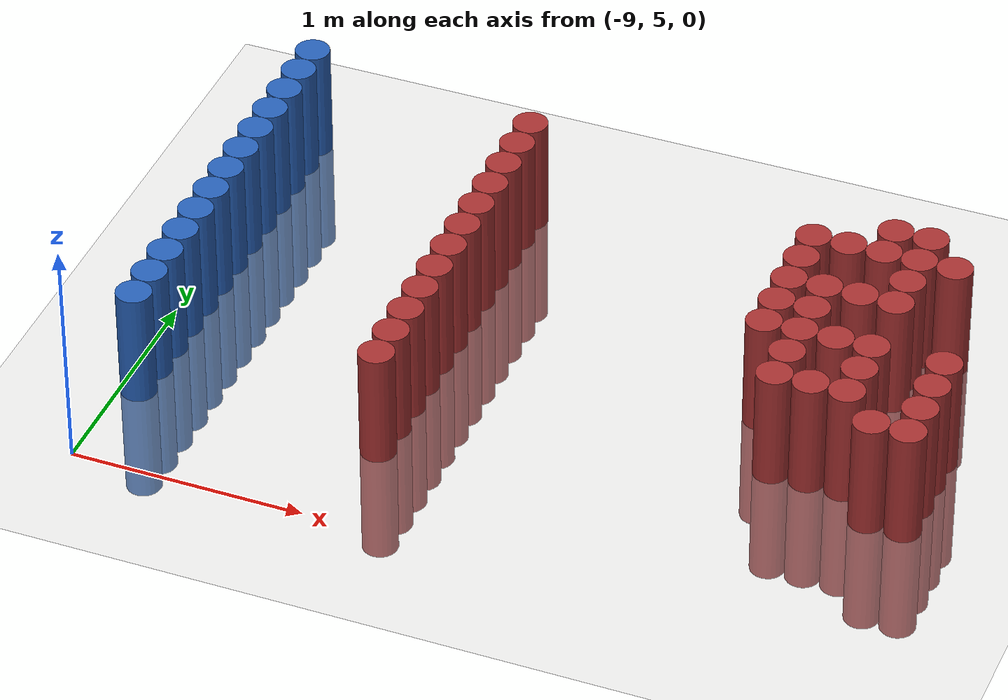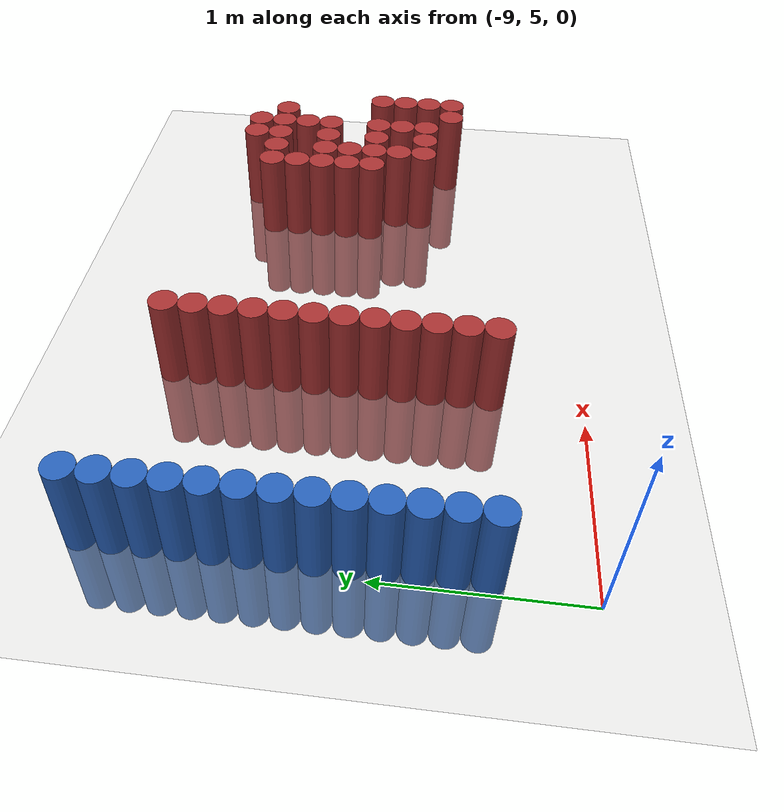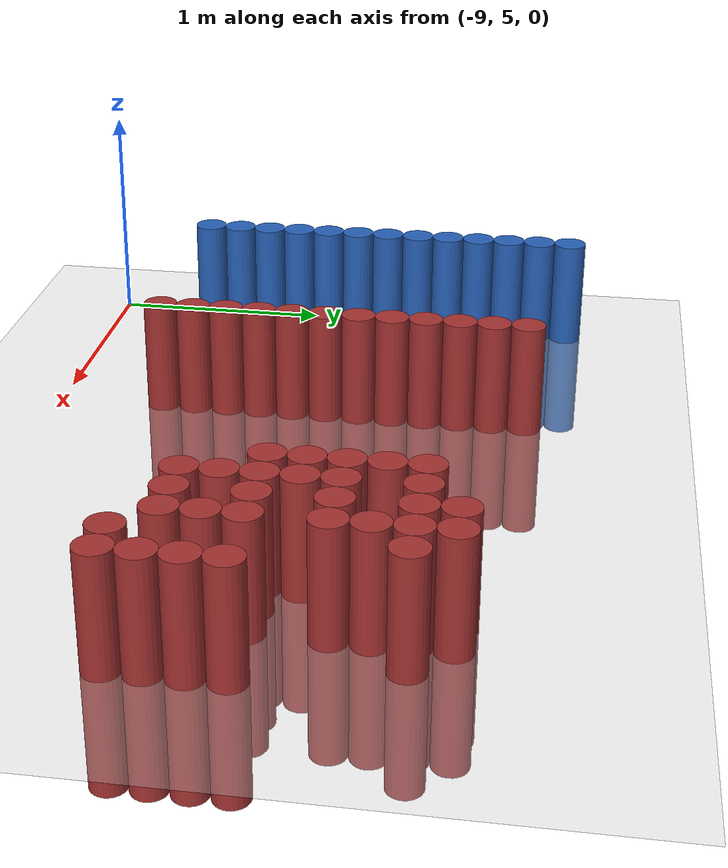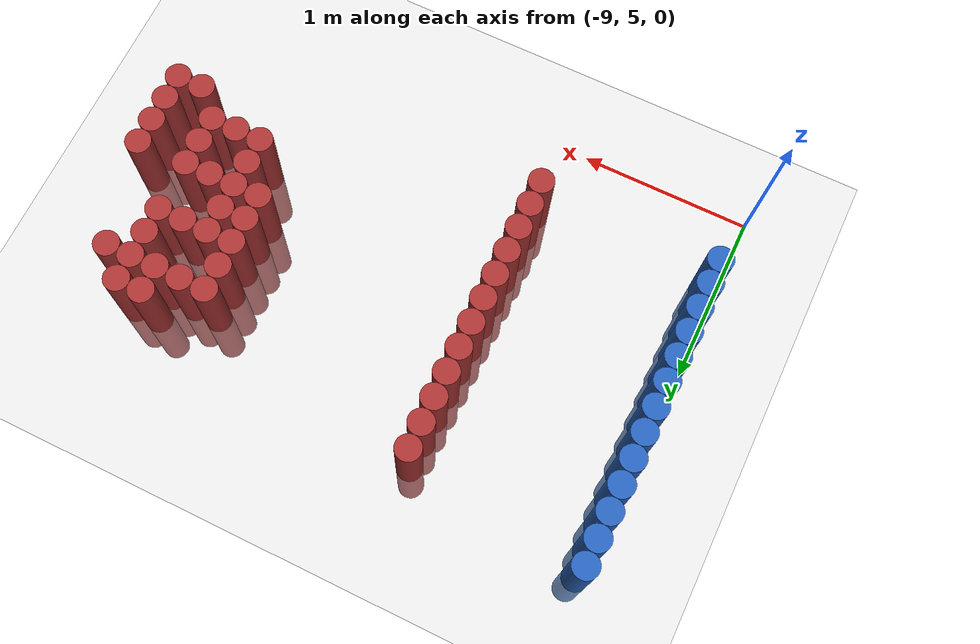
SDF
<sdf version="1.6">
 <world name="default">
  <model name="ground_plane">
   <static>1</static>
   <link name="link">
    <collision name="collision">
     <geometry><plane><normal>0 0 1</normal><size>100 100</size></plane></geometry>
     <surface><friction><ode><mu>100</mu><mu2>50</mu2></ode></friction></surface>
    </collision>
    <visual name="visual">
     <cast_shadows>0</cast_shadows>
     <geometry><plane><normal>0 0 1</normal><size>100 100</size></plane></geometry>
     <material>
      <script><uri>file://media/materials/scripts/gazebo.material</uri><name>Gazebo/Grey</name></script>
     </material>
    </visual>
   </link>
  </model>
  <model name="unit_cylinder_127">
   <static>1</static>
   <pose>-8.925000 5.475000 0.000000 0.000000 0.000000 0.000000</pose>
   <link name="link">
    <inertial>
     <mass>1</mass>
     <inertia><ixx>0.145833</ixx><ixy>0</ixy><ixz>0</ixz><iyy>0.145833</iyy><iyz>0</iyz><izz>0.125</izz></inertia>
    </inertial>
    <collision name="collision">
     <geometry><cylinder><radius>0.075000</radius><length>1</length></cylinder></geometry>
    </collision>
    <visual name="visual">
     <geometry><cylinder><radius>0.075000</radius><length>1</length></cylinder></geometry>
     <material>
      <ambient>0.152000 0.379000 0.720000 1</ambient>
      <diffuse>0.152000 0.379000 0.720000 1</diffuse>
     </material>
     <material>
      <script><name>Gazebo/Grey</name><uri>file://media/materials/scripts/gazebo.material</uri></script>
     </material>
    </visual>
   </link>
  </model>
  <model name="unit_cylinder_128">
   <static>1</static>
   <pose>-8.925000 5.625000 0.000000 0.000000 0.000000 0.000000</pose>
   <link name="link">
    <inertial>
     <mass>1</mass>
     <inertia><ixx>0.145833</ixx><ixy>0</ixy><ixz>0</ixz><iyy>0.145833</iyy><iyz>0</iyz><izz>0.125</izz></inertia>
    </inertial>
    <collision name="collision">
     <geometry><cylinder><radius>0.075000</radius><length>1</length></cylinder></geometry>
    </collision>
    <visual name="visual">
     <geometry><cylinder><radius>0.075000</radius><length>1</length></cylinder></geometry>
     <material>
      <ambient>0.152000 0.379000 0.720000 1</ambient>
      <diffuse>0.152000 0.379000 0.720000 1</diffuse>
     </material>
     <material>
      <script><name>Gazebo/Grey</name><uri>file://media/materials/scripts/gazebo.material</uri></script>
     </material>
    </visual>
   </link>
  </model>
  <model name="unit_cylinder_129">
   <static>1</static>
   <pose>-8.925000 5.775000 0.000000 0.000000 0.000000 0.000000</pose>
   <link name="link">
    <inertial>
     <mass>1</mass>
     <inertia><ixx>0.145833</ixx><ixy>0</ixy><ixz>0</ixz><iyy>0.145833</iyy><iyz>0</iyz><izz>0.125</izz></inertia>
    </inertial>
    <collision name="collision">
     <geometry><cylinder><radius>0.075000</radius><length>1</length></cylinder></geometry>
    </collision>
    <visual name="visual">
     <geometry><cylinder><radius>0.075000</radius><length>1</length></cylinder></geometry>
     <material>
      <ambient>0.152000 0.379000 0.720000 1</ambient>
      <diffuse>0.152000 0.379000 0.720000 1</diffuse>
     </material>
     <material>
      <script><name>Gazebo/Grey</name><uri>file://media/materials/scripts/gazebo.material</uri></script>
     </material>
    </visual>
   </link>
  </model>
  <model name="unit_cylinder_130">
   <static>1</static>
   <pose>-8.925000 5.925000 0.000000 0.000000 0.000000 0.000000</pose>
   <link name="link">
    <inertial>
     <mass>1</mass>
     <inertia><ixx>0.145833</ixx><ixy>0</ixy><ixz>0</ixz><iyy>0.145833</iyy><iyz>0</iyz><izz>0.125</izz></inertia>
    </inertial>
    <collision name="collision">
     <geometry><cylinder><radius>0.075000</radius><length>1</length></cylinder></geometry>
    </collision>
    <visual name="visual">
     <geometry><cylinder><radius>0.075000</radius><length>1</length></cylinder></geometry>
     <material>
      <ambient>0.152000 0.379000 0.720000 1</ambient>
      <diffuse>0.152000 0.379000 0.720000 1</diffuse>
     </material>
     <material>
      <script><name>Gazebo/Grey</name><uri>file://media/materials/scripts/gazebo.material</uri></script>
     </material>
    </visual>
   </link>
  </model>
  <model name="unit_cylinder_131">
   <static>1</static>
   <pose>-8.925000 6.075000 0.000000 0.000000 0.000000 0.000000</pose>
   <link name="link">
    <inertial>
     <mass>1</mass>
     <inertia><ixx>0.145833</ixx><ixy>0</ixy><ixz>0</ixz><iyy>0.145833</iyy><iyz>0</iyz><izz>0.125</izz></inertia>
    </inertial>
    <collision name="collision">
     <geometry><cylinder><radius>0.075000</radius><length>1</length></cylinder></geometry>
    </collision>
    <visual name="visual">
     <geometry><cylinder><radius>0.075000</radius><length>1</length></cylinder></geometry>
     <material>
      <ambient>0.152000 0.379000 0.720000 1</ambient>
      <diffuse>0.152000 0.379000 0.720000 1</diffuse>
     </material>
     <material>
      <script><name>Gazebo/Grey</name><uri>file://media/materials/scripts/gazebo.material</uri></script>
     </material>
    </visual>
   </link>
  </model>
  <model name="unit_cylinder_132">
   <static>1</static>
   <pose>-8.925000 6.225000 0.000000 0.000000 0.000000 0.000000</pose>
   <link name="link">
    <inertial>
     <mass>1</mass>
     <inertia><ixx>0.145833</ixx><ixy>0</ixy><ixz>0</ixz><iyy>0.145833</iyy><iyz>0</iyz><izz>0.125</izz></inertia>
    </inertial>
    <collision name="collision">
     <geometry><cylinder><radius>0.075000</radius><length>1</length></cylinder></geometry>
    </collision>
    <visual name="visual">
     <geometry><cylinder><radius>0.075000</radius><length>1</length></cylinder></geometry>
     <material>
      <ambient>0.152000 0.379000 0.720000 1</ambient>
      <diffuse>0.152000 0.379000 0.720000 1</diffuse>
     </material>
     <material>
      <script><name>Gazebo/Grey</name><uri>file://media/materials/scripts/gazebo.material</uri></script>
     </material>
    </visual>
   </link>
  </model>
  <model name="unit_cylinder_133">
   <static>1</static>
   <pose>-8.925000 6.375000 0.000000 0.000000 0.000000 0.000000</pose>
   <link name="link">
    <inertial>
     <mass>1</mass>
     <inertia><ixx>0.145833</ixx><ixy>0</ixy><ixz>0</ixz><iyy>0.145833</iyy><iyz>0</iyz><izz>0.125</izz></inertia>
    </inertial>
    <collision name="collision">
     <geometry><cylinder><radius>0.075000</radius><length>1</length></cylinder></geometry>
    </collision>
    <visual name="visual">
     <geometry><cylinder><radius>0.075000</radius><length>1</length></cylinder></geometry>
     <material>
      <ambient>0.152000 0.379000 0.720000 1</ambient>
      <diffuse>0.152000 0.379000 0.720000 1</diffuse>
     </material>
     <material>
      <script><name>Gazebo/Grey</name><uri>file://media/materials/scripts/gazebo.material</uri></script>
     </material>
    </visual>
   </link>
  </model>
  <model name="unit_cylinder_134">
   <static>1</static>
   <pose>-8.925000 6.525000 0.000000 0.000000 0.000000 0.000000</pose>
   <link name="link">
    <inertial>
     <mass>1</mass>
     <inertia><ixx>0.145833</ixx><ixy>0</ixy><ixz>0</ixz><iyy>0.145833</iyy><iyz>0</iyz><izz>0.125</izz></inertia>
    </inertial>
    <collision name="collision">
     <geometry><cylinder><radius>0.075000</radius><length>1</length></cylinder></geometry>
    </collision>
    <visual name="visual">
     <geometry><cylinder><radius>0.075000</radius><length>1</length></cylinder></geometry>
     <material>
      <ambient>0.152000 0.379000 0.720000 1</ambient>
      <diffuse>0.152000 0.379000 0.720000 1</diffuse>
     </material>
     <material>
      <script><name>Gazebo/Grey</name><uri>file://media/materials/scripts/gazebo.material</uri></script>
     </material>
    </visual>
   </link>
  </model>
  <model name="unit_cylinder_135">
   <static>1</static>
   <pose>-8.925000 6.675000 0.000000 0.000000 0.000000 0.000000</pose>
   <link name="link">
    <inertial>
     <mass>1</mass>
     <inertia><ixx>0.145833</ixx><ixy>0</ixy><ixz>0</ixz><iyy>0.145833</iyy><iyz>0</iyz><izz>0.125</izz></inertia>
    </inertial>
    <collision name="collision">
     <geometry><cylinder><radius>0.075000</radius><length>1</length></cylinder></geometry>
    </collision>
    <visual name="visual">
     <geometry><cylinder><radius>0.075000</radius><length>1</length></cylinder></geometry>
     <material>
      <ambient>0.152000 0.379000 0.720000 1</ambient>
      <diffuse>0.152000 0.379000 0.720000 1</diffuse>
     </material>
     <material>
      <script><name>Gazebo/Grey</name><uri>file://media/materials/scripts/gazebo.material</uri></script>
     </material>
    </visual>
   </link>
  </model>
  <model name="unit_cylinder_136">
   <static>1</static>
   <pose>-8.925000 6.825000 0.000000 0.000000 0.000000 0.000000</pose>
   <link name="link">
    <inertial>
     <mass>1</mass>
     <inertia><ixx>0.145833</ixx><ixy>0</ixy><ixz>0</ixz><iyy>0.145833</iyy><iyz>0</iyz><izz>0.125</izz></inertia>
    </inertial>
    <collision name="collision">
     <geometry><cylinder><radius>0.075000</radius><length>1</length></cylinder></geometry>
    </collision>
    <visual name="visual">
     <geometry><cylinder><radius>0.075000</radius><length>1</length></cylinder></geometry>
     <material>
      <ambient>0.152000 0.379000 0.720000 1</ambient>
      <diffuse>0.152000 0.379000 0.720000 1</diffuse>
     </material>
     <material>
      <script><name>Gazebo/Grey</name><uri>file://media/materials/scripts/gazebo.material</uri></script>
     </material>
    </visual>
   </link>
  </model>
  <model name="unit_cylinder_137">
   <static>1</static>
   <pose>-8.925000 6.975000 0.000000 0.000000 0.000000 0.000000</pose>
   <link name="link">
    <inertial>
     <mass>1</mass>
     <inertia><ixx>0.145833</ixx><ixy>0</ixy><ixz>0</ixz><iyy>0.145833</iyy><iyz>0</iyz><izz>0.125</izz></inertia>
    </inertial>
    <collision name="collision">
     <geometry><cylinder><radius>0.075000</radius><length>1</length></cylinder></geometry>
    </collision>
    <visual name="visual">
     <geometry><cylinder><radius>0.075000</radius><length>1</length></cylinder></geometry>
     <material>
      <ambient>0.152000 0.379000 0.720000 1</ambient>
      <diffuse>0.152000 0.379000 0.720000 1</diffuse>
     </material>
     <material>
      <script><name>Gazebo/Grey</name><uri>file://media/materials/scripts/gazebo.material</uri></script>
     </material>
    </visual>
   </link>
  </model>
  <model name="unit_cylinder_138">
   <static>1</static>
   <pose>-8.925000 7.125000 0.000000 0.000000 0.000000 0.000000</pose>
   <link name="link">
    <inertial>
     <mass>1</mass>
     <inertia><ixx>0.145833</ixx><ixy>0</ixy><ixz>0</ixz><iyy>0.145833</iyy><iyz>0</iyz><izz>0.125</izz></inertia>
    </inertial>
    <collision name="collision">
     <geometry><cylinder><radius>0.075000</radius><length>1</length></cylinder></geometry>
    </collision>
    <visual name="visual">
     <geometry><cylinder><radius>0.075000</radius><length>1</length></cylinder></geometry>
     <material>
      <ambient>0.152000 0.379000 0.720000 1</ambient>
      <diffuse>0.152000 0.379000 0.720000 1</diffuse>
     </material>
     <material>
      <script><name>Gazebo/Grey</name><uri>file://media/materials/scripts/gazebo.material</uri></script>
     </material>
    </visual>
   </link>
  </model>
  <model name="unit_cylinder_139">
   <static>1</static>
   <pose>-8.925000 7.275000 0.000000 0.000000 0.000000 0.000000</pose>
   <link name="link">
    <inertial>
     <mass>1</mass>
     <inertia><ixx>0.145833</ixx><ixy>0</ixy><ixz>0</ixz><iyy>0.145833</iyy><iyz>0</iyz><izz>0.125</izz></inertia>
    </inertial>
    <collision name="collision">
     <geometry><cylinder><radius>0.075000</radius><length>1</length></cylinder></geometry>
    </collision>
    <visual name="visual">
     <geometry><cylinder><radius>0.075000</radius><length>1</length></cylinder></geometry>
     <material>
      <ambient>0.152000 0.379000 0.720000 1</ambient>
      <diffuse>0.152000 0.379000 0.720000 1</diffuse>
     </material>
     <material>
      <script><name>Gazebo/Grey</name><uri>file://media/materials/scripts/gazebo.material</uri></script>
     </material>
    </visual>
   </link>
  </model>
  <model name="unit_cylinder_169">
   <static>1</static>
   <pose>-7.875000 5.475000 0.000000 0.000000 0.000000 0.000000</pose>
   <link name="link">
    <inertial>
     <mass>1</mass>
     <inertia><ixx>0.145833</ixx><ixy>0</ixy><ixz>0</ixz><iyy>0.145833</iyy><iyz>0</iyz><izz>0.125</izz></inertia>
    </inertial>
    <collision name="collision">
     <geometry><cylinder><radius>0.075000</radius><length>1</length></cylinder></geometry>
    </collision>
    <visual name="visual">
     <geometry><cylinder><radius>0.075000</radius><length>1</length></cylinder></geometry>
     <material>
      <ambient>0.648000 0.192000 0.192000 1</ambient>
      <diffuse>0.648000 0.192000 0.192000 1</diffuse>
     </material>
     <material>
      <script><name>Gazebo/Grey</name><uri>file://media/materials/scripts/gazebo.material</uri></script>
     </material>
    </visual>
   </link>
  </model>
  <model name="unit_cylinder_170">
   <static>1</static>
   <pose>-7.875000 5.625000 0.000000 0.000000 0.000000 0.000000</pose>
   <link name="link">
    <inertial>
     <mass>1</mass>
     <inertia><ixx>0.145833</ixx><ixy>0</ixy><ixz>0</ixz><iyy>0.145833</iyy><iyz>0</iyz><izz>0.125</izz></inertia>
    </inertial>
    <collision name="collision">
     <geometry><cylinder><radius>0.075000</radius><length>1</length></cylinder></geometry>
    </collision>
    <visual name="visual">
     <geometry><cylinder><radius>0.075000</radius><length>1</length></cylinder></geometry>
     <material>
      <ambient>0.648000 0.192000 0.192000 1</ambient>
      <diffuse>0.648000 0.192000 0.192000 1</diffuse>
     </material>
     <material>
      <script><name>Gazebo/Grey</name><uri>file://media/materials/scripts/gazebo.material</uri></script>
     </material>
    </visual>
   </link>
  </model>
  <model name="unit_cylinder_171">
   <static>1</static>
   <pose>-7.875000 5.775000 0.000000 0.000000 0.000000 0.000000</pose>
   <link name="link">
    <inertial>
     <mass>1</mass>
     <inertia><ixx>0.145833</ixx><ixy>0</ixy><ixz>0</ixz><iyy>0.145833</iyy><iyz>0</iyz><izz>0.125</izz></inertia>
    </inertial>
    <collision name="collision">
     <geometry><cylinder><radius>0.075000</radius><length>1</length></cylinder></geometry>
    </collision>
    <visual name="visual">
     <geometry><cylinder><radius>0.075000</radius><length>1</length></cylinder></geometry>
     <material>
      <ambient>0.648000 0.192000 0.192000 1</ambient>
      <diffuse>0.648000 0.192000 0.192000 1</diffuse>
     </material>
     <material>
      <script><name>Gazebo/Grey</name><uri>file://media/materials/scripts/gazebo.material</uri></script>
     </material>
    </visual>
   </link>
  </model>
  <model name="unit_cylinder_172">
   <static>1</static>
   <pose>-7.875000 5.925000 0.000000 0.000000 0.000000 0.000000</pose>
   <link name="link">
    <inertial>
     <mass>1</mass>
     <inertia><ixx>0.145833</ixx><ixy>0</ixy><ixz>0</ixz><iyy>0.145833</iyy><iyz>0</iyz><izz>0.125</izz></inertia>
    </inertial>
    <collision name="collision">
     <geometry><cylinder><radius>0.075000</radius><length>1</length></cylinder></geometry>
    </collision>
    <visual name="visual">
     <geometry><cylinder><radius>0.075000</radius><length>1</length></cylinder></geometry>
     <material>
      <ambient>0.648000 0.192000 0.192000 1</ambient>
      <diffuse>0.648000 0.192000 0.192000 1</diffuse>
     </material>
     <material>
      <script><name>Gazebo/Grey</name><uri>file://media/materials/scripts/gazebo.material</uri></script>
     </material>
    </visual>
   </link>
  </model>
  <model name="unit_cylinder_173">
   <static>1</static>
   <pose>-7.875000 6.075000 0.000000 0.000000 0.000000 0.000000</pose>
   <link name="link">
    <inertial>
     <mass>1</mass>
     <inertia><ixx>0.145833</ixx><ixy>0</ixy><ixz>0</ixz><iyy>0.145833</iyy><iyz>0</iyz><izz>0.125</izz></inertia>
    </inertial>
    <collision name="collision">
     <geometry><cylinder><radius>0.075000</radius><length>1</length></cylinder></geometry>
    </collision>
    <visual name="visual">
     <geometry><cylinder><radius>0.075000</radius><length>1</length></cylinder></geometry>
     <material>
      <ambient>0.648000 0.192000 0.192000 1</ambient>
      <diffuse>0.648000 0.192000 0.192000 1</diffuse>
     </material>
     <material>
      <script><name>Gazebo/Grey</name><uri>file://media/materials/scripts/gazebo.material</uri></script>
     </material>
    </visual>
   </link>
  </model>
  <model name="unit_cylinder_174">
   <static>1</static>
   <pose>-7.875000 6.225000 0.000000 0.000000 0.000000 0.000000</pose>
   <link name="link">
    <inertial>
     <mass>1</mass>
     <inertia><ixx>0.145833</ixx><ixy>0</ixy><ixz>0</ixz><iyy>0.145833</iyy><iyz>0</iyz><izz>0.125</izz></inertia>
    </inertial>
    <collision name="collision">
     <geometry><cylinder><radius>0.075000</radius><length>1</length></cylinder></geometry>
    </collision>
    <visual name="visual">
     <geometry><cylinder><radius>0.075000</radius><length>1</length></cylinder></geometry>
     <material>
      <ambient>0.648000 0.192000 0.192000 1</ambient>
      <diffuse>0.648000 0.192000 0.192000 1</diffuse>
     </material>
     <material>
      <script><name>Gazebo/Grey</name><uri>file://media/materials/scripts/gazebo.material</uri></script>
     </material>
    </visual>
   </link>
  </model>
  <model name="unit_cylinder_175">
   <static>1</static>
   <pose>-7.875000 6.375000 0.000000 0.000000 0.000000 0.000000</pose>
   <link name="link">
    <inertial>
     <mass>1</mass>
     <inertia><ixx>0.145833</ixx><ixy>0</ixy><ixz>0</ixz><iyy>0.145833</iyy><iyz>0</iyz><izz>0.125</izz></inertia>
    </inertial>
    <collision name="collision">
     <geometry><cylinder><radius>0.075000</radius><length>1</length></cylinder></geometry>
    </collision>
    <visual name="visual">
     <geometry><cylinder><radius>0.075000</radius><length>1</length></cylinder></geometry>
     <material>
      <ambient>0.648000 0.192000 0.192000 1</ambient>
      <diffuse>0.648000 0.192000 0.192000 1</diffuse>
     </material>
     <material>
      <script><name>Gazebo/Grey</name><uri>file://media/materials/scripts/gazebo.material</uri></script>
     </material>
    </visual>
   </link>
  </model>
  <model name="unit_cylinder_176">
   <static>1</static>
   <pose>-7.875000 6.525000 0.000000 0.000000 0.000000 0.000000</pose>
   <link name="link">
    <inertial>
     <mass>1</mass>
     <inertia><ixx>0.145833</ixx><ixy>0</ixy><ixz>0</ixz><iyy>0.145833</iyy><iyz>0</iyz><izz>0.125</izz></inertia>
    </inertial>
    <collision name="collision">
     <geometry><cylinder><radius>0.075000</radius><length>1</length></cylinder></geometry>
    </collision>
    <visual name="visual">
     <geometry><cylinder><radius>0.075000</radius><length>1</length></cylinder></geometry>
     <material>
      <ambient>0.648000 0.192000 0.192000 1</ambient>
      <diffuse>0.648000 0.192000 0.192000 1</diffuse>
     </material>
     <material>
      <script><name>Gazebo/Grey</name><uri>file://media/materials/scripts/gazebo.material</uri></script>
     </material>
    </visual>
   </link>
  </model>
  <model name="unit_cylinder_177">
   <static>1</static>
   <pose>-7.875000 6.675000 0.000000 0.000000 0.000000 0.000000</pose>
   <link name="link">
    <inertial>
     <mass>1</mass>
     <inertia><ixx>0.145833</ixx><ixy>0</ixy><ixz>0</ixz><iyy>0.145833</iyy><iyz>0</iyz><izz>0.125</izz></inertia>
    </inertial>
    <collision name="collision">
     <geometry><cylinder><radius>0.075000</radius><length>1</length></cylinder></geometry>
    </collision>
    <visual name="visual">
     <geometry><cylinder><radius>0.075000</radius><length>1</length></cylinder></geometry>
     <material>
      <ambient>0.648000 0.192000 0.192000 1</ambient>
      <diffuse>0.648000 0.192000 0.192000 1</diffuse>
     </material>
     <material>
      <script><name>Gazebo/Grey</name><uri>file://media/materials/scripts/gazebo.material</uri></script>
     </material>
    </visual>
   </link>
  </model>
  <model name="unit_cylinder_178">
   <static>1</static>
   <pose>-7.875000 6.825000 0.000000 0.000000 0.000000 0.000000</pose>
   <link name="link">
    <inertial>
     <mass>1</mass>
     <inertia><ixx>0.145833</ixx><ixy>0</ixy><ixz>0</ixz><iyy>0.145833</iyy><iyz>0</iyz><izz>0.125</izz></inertia>
    </inertial>
    <collision name="collision">
     <geometry><cylinder><radius>0.075000</radius><length>1</length></cylinder></geometry>
    </collision>
    <visual name="visual">
     <geometry><cylinder><radius>0.075000</radius><length>1</length></cylinder></geometry>
     <material>
      <ambient>0.648000 0.192000 0.192000 1</ambient>
      <diffuse>0.648000 0.192000 0.192000 1</diffuse>
     </material>
     <material>
      <script><name>Gazebo/Grey</name><uri>file://media/materials/scripts/gazebo.material</uri></script>
     </material>
    </visual>
   </link>
  </model>
  <model name="unit_cylinder_179">
   <static>1</static>
   <pose>-7.875000 6.975000 0.000000 0.000000 0.000000 0.000000</pose>
   <link name="link">
    <inertial>
     <mass>1</mass>
     <inertia><ixx>0.145833</ixx><ixy>0</ixy><ixz>0</ixz><iyy>0.145833</iyy><iyz>0</iyz><izz>0.125</izz></inertia>
    </inertial>
    <collision name="collision">
     <geometry><cylinder><radius>0.075000</radius><length>1</length></cylinder></geometry>
    </collision>
    <visual name="visual">
     <geometry><cylinder><radius>0.075000</radius><length>1</length></cylinder></geometry>
     <material>
      <ambient>0.648000 0.192000 0.192000 1</ambient>
      <diffuse>0.648000 0.192000 0.192000 1</diffuse>
     </material>
     <material>
      <script><name>Gazebo/Grey</name><uri>file://media/materials/scripts/gazebo.material</uri></script>
     </material>
    </visual>
   </link>
  </model>
  <model name="unit_cylinder_180">
   <static>1</static>
   <pose>-7.875000 7.125000 0.000000 0.000000 0.000000 0.000000</pose>
   <link name="link">
    <inertial>
     <mass>1</mass>
     <inertia><ixx>0.145833</ixx><ixy>0</ixy><ixz>0</ixz><iyy>0.145833</iyy><iyz>0</iyz><izz>0.125</izz></inertia>
    </inertial>
    <collision name="collision">
     <geometry><cylinder><radius>0.075000</radius><length>1</length></cylinder></geometry>
    </collision>
    <visual name="visual">
     <geometry><cylinder><radius>0.075000</radius><length>1</length></cylinder></geometry>
     <material>
      <ambient>0.648000 0.192000 0.192000 1</ambient>
      <diffuse>0.648000 0.192000 0.192000 1</diffuse>
     </material>
     <material>
      <script><name>Gazebo/Grey</name><uri>file://media/materials/scripts/gazebo.material</uri></script>
     </material>
    </visual>
   </link>
  </model>
  <model name="unit_cylinder_199">
   <static>1</static>
   <pose>-6.525000 6.225000 0.000000 0.000000 0.000000 0.000000</pose>
   <link name="link">
    <inertial>
     <mass>1</mass>
     <inertia><ixx>0.145833</ixx><ixy>0</ixy><ixz>0</ixz><iyy>0.145833</iyy><iyz>0</iyz><izz>0.125</izz></inertia>
    </inertial>
    <collision name="collision">
     <geometry><cylinder><radius>0.075000</radius><length>1</length></cylinder></geometry>
    </collision>
    <visual name="visual">
     <geometry><cylinder><radius>0.075000</radius><length>1</length></cylinder></geometry>
     <material>
      <ambient>0.648000 0.192000 0.192000 1</ambient>
      <diffuse>0.648000 0.192000 0.192000 1</diffuse>
     </material>
     <material>
      <script><name>Gazebo/Grey</name><uri>file://media/materials/scripts/gazebo.material</uri></script>
     </material>
    </visual>
   </link>
  </model>
  <model name="unit_cylinder_200">
   <static>1</static>
   <pose>-6.525000 6.375000 0.000000 0.000000 0.000000 0.000000</pose>
   <link name="link">
    <inertial>
     <mass>1</mass>
     <inertia><ixx>0.145833</ixx><ixy>0</ixy><ixz>0</ixz><iyy>0.145833</iyy><iyz>0</iyz><izz>0.125</izz></inertia>
    </inertial>
    <collision name="collision">
     <geometry><cylinder><radius>0.075000</radius><length>1</length></cylinder></geometry>
    </collision>
    <visual name="visual">
     <geometry><cylinder><radius>0.075000</radius><length>1</length></cylinder></geometry>
     <material>
      <ambient>0.648000 0.192000 0.192000 1</ambient>
      <diffuse>0.648000 0.192000 0.192000 1</diffuse>
     </material>
     <material>
      <script><name>Gazebo/Grey</name><uri>file://media/materials/scripts/gazebo.material</uri></script>
     </material>
    </visual>
   </link>
  </model>
  <model name="unit_cylinder_201">
   <static>1</static>
   <pose>-6.525000 6.525000 0.000000 0.000000 0.000000 0.000000</pose>
   <link name="link">
    <inertial>
     <mass>1</mass>
     <inertia><ixx>0.145833</ixx><ixy>0</ixy><ixz>0</ixz><iyy>0.145833</iyy><iyz>0</iyz><izz>0.125</izz></inertia>
    </inertial>
    <collision name="collision">
     <geometry><cylinder><radius>0.075000</radius><length>1</length></cylinder></geometry>
    </collision>
    <visual name="visual">
     <geometry><cylinder><radius>0.075000</radius><length>1</length></cylinder></geometry>
     <material>
      <ambient>0.648000 0.192000 0.192000 1</ambient>
      <diffuse>0.648000 0.192000 0.192000 1</diffuse>
     </material>
     <material>
      <script><name>Gazebo/Grey</name><uri>file://media/materials/scripts/gazebo.material</uri></script>
     </material>
    </visual>
   </link>
  </model>
  <model name="unit_cylinder_202">
   <static>1</static>
   <pose>-6.525000 6.675000 0.000000 0.000000 0.000000 0.000000</pose>
   <link name="link">
    <inertial>
     <mass>1</mass>
     <inertia><ixx>0.145833</ixx><ixy>0</ixy><ixz>0</ixz><iyy>0.145833</iyy><iyz>0</iyz><izz>0.125</izz></inertia>
    </inertial>
    <collision name="collision">
     <geometry><cylinder><radius>0.075000</radius><length>1</length></cylinder></geometry>
    </collision>
    <visual name="visual">
     <geometry><cylinder><radius>0.075000</radius><length>1</length></cylinder></geometry>
     <material>
      <ambient>0.648000 0.192000 0.192000 1</ambient>
      <diffuse>0.648000 0.192000 0.192000 1</diffuse>
     </material>
     <material>
      <script><name>Gazebo/Grey</name><uri>file://media/materials/scripts/gazebo.material</uri></script>
     </material>
    </visual>
   </link>
  </model>
  <model name="unit_cylinder_203">
   <static>1</static>
   <pose>-6.525000 6.825000 0.000000 0.000000 0.000000 0.000000</pose>
   <link name="link">
    <inertial>
     <mass>1</mass>
     <inertia><ixx>0.145833</ixx><ixy>0</ixy><ixz>0</ixz><iyy>0.145833</iyy><iyz>0</iyz><izz>0.125</izz></inertia>
    </inertial>
    <collision name="collision">
     <geometry><cylinder><radius>0.075000</radius><length>1</length></cylinder></geometry>
    </collision>
    <visual name="visual">
     <geometry><cylinder><radius>0.075000</radius><length>1</length></cylinder></geometry>
     <material>
      <ambient>0.648000 0.192000 0.192000 1</ambient>
      <diffuse>0.648000 0.192000 0.192000 1</diffuse>
     </material>
     <material>
      <script><name>Gazebo/Grey</name><uri>file://media/materials/scripts/gazebo.material</uri></script>
     </material>
    </visual>
   </link>
  </model>
  <model name="unit_cylinder_204">
   <static>1</static>
   <pose>-6.375000 5.925000 0.000000 0.000000 0.000000 0.000000</pose>
   <link name="link">
    <inertial>
     <mass>1</mass>
     <inertia><ixx>0.145833</ixx><ixy>0</ixy><ixz>0</ixz><iyy>0.145833</iyy><iyz>0</iyz><izz>0.125</izz></inertia>
    </inertial>
    <collision name="collision">
     <geometry><cylinder><radius>0.075000</radius><length>1</length></cylinder></geometry>
    </collision>
    <visual name="visual">
     <geometry><cylinder><radius>0.075000</radius><length>1</length></cylinder></geometry>
     <material>
      <ambient>0.648000 0.192000 0.192000 1</ambient>
      <diffuse>0.648000 0.192000 0.192000 1</diffuse>
     </material>
     <material>
      <script><name>Gazebo/Grey</name><uri>file://media/materials/scripts/gazebo.material</uri></script>
     </material>
    </visual>
   </link>
  </model>
  <model name="unit_cylinder_205">
   <static>1</static>
   <pose>-6.375000 6.075000 0.000000 0.000000 0.000000 0.000000</pose>
   <link name="link">
    <inertial>
     <mass>1</mass>
     <inertia><ixx>0.145833</ixx><ixy>0</ixy><ixz>0</ixz><iyy>0.145833</iyy><iyz>0</iyz><izz>0.125</izz></inertia>
    </inertial>
    <collision name="collision">
     <geometry><cylinder><radius>0.075000</radius><length>1</length></cylinder></geometry>
    </collision>
    <visual name="visual">
     <geometry><cylinder><radius>0.075000</radius><length>1</length></cylinder></geometry>
     <material>
      <ambient>0.648000 0.192000 0.192000 1</ambient>
      <diffuse>0.648000 0.192000 0.192000 1</diffuse>
     </material>
     <material>
      <script><name>Gazebo/Grey</name><uri>file://media/materials/scripts/gazebo.material</uri></script>
     </material>
    </visual>
   </link>
  </model>
  <model name="unit_cylinder_206">
   <static>1</static>
   <pose>-6.375000 6.225000 0.000000 0.000000 0.000000 0.000000</pose>
   <link name="link">
    <inertial>
     <mass>1</mass>
     <inertia><ixx>0.145833</ixx><ixy>0</ixy><ixz>0</ixz><iyy>0.145833</iyy><iyz>0</iyz><izz>0.125</izz></inertia>
    </inertial>
    <collision name="collision">
     <geometry><cylinder><radius>0.075000</radius><length>1</length></cylinder></geometry>
    </collision>
    <visual name="visual">
     <geometry><cylinder><radius>0.075000</radius><length>1</length></cylinder></geometry>
     <material>
      <ambient>0.648000 0.192000 0.192000 1</ambient>
      <diffuse>0.648000 0.192000 0.192000 1</diffuse>
     </material>
     <material>
      <script><name>Gazebo/Grey</name><uri>file://media/materials/scripts/gazebo.material</uri></script>
     </material>
    </visual>
   </link>
  </model>
  <model name="unit_cylinder_207">
   <static>1</static>
   <pose>-6.375000 6.375000 0.000000 0.000000 0.000000 0.000000</pose>
   <link name="link">
    <inertial>
     <mass>1</mass>
     <inertia><ixx>0.145833</ixx><ixy>0</ixy><ixz>0</ixz><iyy>0.145833</iyy><iyz>0</iyz><izz>0.125</izz></inertia>
    </inertial>
    <collision name="collision">
     <geometry><cylinder><radius>0.075000</radius><length>1</length></cylinder></geometry>
    </collision>
    <visual name="visual">
     <geometry><cylinder><radius>0.075000</radius><length>1</length></cylinder></geometry>
     <material>
      <ambient>0.648000 0.192000 0.192000 1</ambient>
      <diffuse>0.648000 0.192000 0.192000 1</diffuse>
     </material>
     <material>
      <script><name>Gazebo/Grey</name><uri>file://media/materials/scripts/gazebo.material</uri></script>
     </material>
    </visual>
   </link>
  </model>
  <model name="unit_cylinder_208">
   <static>1</static>
   <pose>-6.375000 6.525000 0.000000 0.000000 0.000000 0.000000</pose>
   <link name="link">
    <inertial>
     <mass>1</mass>
     <inertia><ixx>0.145833</ixx><ixy>0</ixy><ixz>0</ixz><iyy>0.145833</iyy><iyz>0</iyz><izz>0.125</izz></inertia>
    </inertial>
    <collision name="collision">
     <geometry><cylinder><radius>0.075000</radius><length>1</length></cylinder></geometry>
    </collision>
    <visual name="visual">
     <geometry><cylinder><radius>0.075000</radius><length>1</length></cylinder></geometry>
     <material>
      <ambient>0.648000 0.192000 0.192000 1</ambient>
      <diffuse>0.648000 0.192000 0.192000 1</diffuse>
     </material>
     <material>
      <script><name>Gazebo/Grey</name><uri>file://media/materials/scripts/gazebo.material</uri></script>
     </material>
    </visual>
   </link>
  </model>
  <model name="unit_cylinder_209">
   <static>1</static>
   <pose>-6.375000 6.825000 0.000000 0.000000 0.000000 0.000000</pose>
   <link name="link">
    <inertial>
     <mass>1</mass>
     <inertia><ixx>0.145833</ixx><ixy>0</ixy><ixz>0</ixz><iyy>0.145833</iyy><iyz>0</iyz><izz>0.125</izz></inertia>
    </inertial>
    <collision name="collision">
     <geometry><cylinder><radius>0.075000</radius><length>1</length></cylinder></geometry>
    </collision>
    <visual name="visual">
     <geometry><cylinder><radius>0.075000</radius><length>1</length></cylinder></geometry>
     <material>
      <ambient>0.648000 0.192000 0.192000 1</ambient>
      <diffuse>0.648000 0.192000 0.192000 1</diffuse>
     </material>
     <material>
      <script><name>Gazebo/Grey</name><uri>file://media/materials/scripts/gazebo.material</uri></script>
     </material>
    </visual>
   </link>
  </model>
  <model name="unit_cylinder_212">
   <static>1</static>
   <pose>-6.225000 5.925000 0.000000 0.000000 0.000000 0.000000</pose>
   <link name="link">
    <inertial>
     <mass>1</mass>
     <inertia><ixx>0.145833</ixx><ixy>0</ixy><ixz>0</ixz><iyy>0.145833</iyy><iyz>0</iyz><izz>0.125</izz></inertia>
    </inertial>
    <collision name="collision">
     <geometry><cylinder><radius>0.075000</radius><length>1</length></cylinder></geometry>
    </collision>
    <visual name="visual">
     <geometry><cylinder><radius>0.075000</radius><length>1</length></cylinder></geometry>
     <material>
      <ambient>0.648000 0.192000 0.192000 1</ambient>
      <diffuse>0.648000 0.192000 0.192000 1</diffuse>
     </material>
     <material>
      <script><name>Gazebo/Grey</name><uri>file://media/materials/scripts/gazebo.material</uri></script>
     </material>
    </visual>
   </link>
  </model>
  <model name="unit_cylinder_213">
   <static>1</static>
   <pose>-6.225000 6.225000 0.000000 0.000000 0.000000 0.000000</pose>
   <link name="link">
    <inertial>
     <mass>1</mass>
     <inertia><ixx>0.145833</ixx><ixy>0</ixy><ixz>0</ixz><iyy>0.145833</iyy><iyz>0</iyz><izz>0.125</izz></inertia>
    </inertial>
    <collision name="collision">
     <geometry><cylinder><radius>0.075000</radius><length>1</length></cylinder></geometry>
    </collision>
    <visual name="visual">
     <geometry><cylinder><radius>0.075000</radius><length>1</length></cylinder></geometry>
     <material>
      <ambient>0.648000 0.192000 0.192000 1</ambient>
      <diffuse>0.648000 0.192000 0.192000 1</diffuse>
     </material>
     <material>
      <script><name>Gazebo/Grey</name><uri>file://media/materials/scripts/gazebo.material</uri></script>
     </material>
    </visual>
   </link>
  </model>
  <model name="unit_cylinder_214">
   <static>1</static>
   <pose>-6.225000 6.525000 0.000000 0.000000 0.000000 0.000000</pose>
   <link name="link">
    <inertial>
     <mass>1</mass>
     <inertia><ixx>0.145833</ixx><ixy>0</ixy><ixz>0</ixz><iyy>0.145833</iyy><iyz>0</iyz><izz>0.125</izz></inertia>
    </inertial>
    <collision name="collision">
     <geometry><cylinder><radius>0.075000</radius><length>1</length></cylinder></geometry>
    </collision>
    <visual name="visual">
     <geometry><cylinder><radius>0.075000</radius><length>1</length></cylinder></geometry>
     <material>
      <ambient>0.648000 0.192000 0.192000 1</ambient>
      <diffuse>0.648000 0.192000 0.192000 1</diffuse>
     </material>
     <material>
      <script><name>Gazebo/Grey</name><uri>file://media/materials/scripts/gazebo.material</uri></script>
     </material>
    </visual>
   </link>
  </model>
  <model name="unit_cylinder_215">
   <static>1</static>
   <pose>-6.225000 6.825000 0.000000 0.000000 0.000000 0.000000</pose>
   <link name="link">
    <inertial>
     <mass>1</mass>
     <inertia><ixx>0.145833</ixx><ixy>0</ixy><ixz>0</ixz><iyy>0.145833</iyy><iyz>0</iyz><izz>0.125</izz></inertia>
    </inertial>
    <collision name="collision">
     <geometry><cylinder><radius>0.075000</radius><length>1</length></cylinder></geometry>
    </collision>
    <visual name="visual">
     <geometry><cylinder><radius>0.075000</radius><length>1</length></cylinder></geometry>
     <material>
      <ambient>0.648000 0.192000 0.192000 1</ambient>
      <diffuse>0.648000 0.192000 0.192000 1</diffuse>
     </material>
     <material>
      <script><name>Gazebo/Grey</name><uri>file://media/materials/scripts/gazebo.material</uri></script>
     </material>
    </visual>
   </link>
  </model>
  <model name="unit_cylinder_216">
   <static>1</static>
   <pose>-6.225000 6.975000 0.000000 0.000000 0.000000 0.000000</pose>
   <link name="link">
    <inertial>
     <mass>1</mass>
     <inertia><ixx>0.145833</ixx><ixy>0</ixy><ixz>0</ixz><iyy>0.145833</iyy><iyz>0</iyz><izz>0.125</izz></inertia>
    </inertial>
    <collision name="collision">
     <geometry><cylinder><radius>0.075000</radius><length>1</length></cylinder></geometry>
    </collision>
    <visual name="visual">
     <geometry><cylinder><radius>0.075000</radius><length>1</length></cylinder></geometry>
     <material>
      <ambient>0.648000 0.192000 0.192000 1</ambient>
      <diffuse>0.648000 0.192000 0.192000 1</diffuse>
     </material>
     <material>
      <script><name>Gazebo/Grey</name><uri>file://media/materials/scripts/gazebo.material</uri></script>
     </material>
    </visual>
   </link>
  </model>
  <model name="unit_cylinder_221">
   <static>1</static>
   <pose>-6.075000 5.925000 0.000000 0.000000 0.000000 0.000000</pose>
   <link name="link">
    <inertial>
     <mass>1</mass>
     <inertia><ixx>0.145833</ixx><ixy>0</ixy><ixz>0</ixz><iyy>0.145833</iyy><iyz>0</iyz><izz>0.125</izz></inertia>
    </inertial>
    <collision name="collision">
     <geometry><cylinder><radius>0.075000</radius><length>1</length></cylinder></geometry>
    </collision>
    <visual name="visual">
     <geometry><cylinder><radius>0.075000</radius><length>1</length></cylinder></geometry>
     <material>
      <ambient>0.648000 0.192000 0.192000 1</ambient>
      <diffuse>0.648000 0.192000 0.192000 1</diffuse>
     </material>
     <material>
      <script><name>Gazebo/Grey</name><uri>file://media/materials/scripts/gazebo.material</uri></script>
     </material>
    </visual>
   </link>
  </model>
  <model name="unit_cylinder_222">
   <static>1</static>
   <pose>-6.075000 6.075000 0.000000 0.000000 0.000000 0.000000</pose>
   <link name="link">
    <inertial>
     <mass>1</mass>
     <inertia><ixx>0.145833</ixx><ixy>0</ixy><ixz>0</ixz><iyy>0.145833</iyy><iyz>0</iyz><izz>0.125</izz></inertia>
    </inertial>
    <collision name="collision">
     <geometry><cylinder><radius>0.075000</radius><length>1</length></cylinder></geometry>
    </collision>
    <visual name="visual">
     <geometry><cylinder><radius>0.075000</radius><length>1</length></cylinder></geometry>
     <material>
      <ambient>0.648000 0.192000 0.192000 1</ambient>
      <diffuse>0.648000 0.192000 0.192000 1</diffuse>
     </material>
     <material>
      <script><name>Gazebo/Grey</name><uri>file://media/materials/scripts/gazebo.material</uri></script>
     </material>
    </visual>
   </link>
  </model>
  <model name="unit_cylinder_223">
   <static>1</static>
   <pose>-6.075000 6.225000 0.000000 0.000000 0.000000 0.000000</pose>
   <link name="link">
    <inertial>
     <mass>1</mass>
     <inertia><ixx>0.145833</ixx><ixy>0</ixy><ixz>0</ixz><iyy>0.145833</iyy><iyz>0</iyz><izz>0.125</izz></inertia>
    </inertial>
    <collision name="collision">
     <geometry><cylinder><radius>0.075000</radius><length>1</length></cylinder></geometry>
    </collision>
    <visual name="visual">
     <geometry><cylinder><radius>0.075000</radius><length>1</length></cylinder></geometry>
     <material>
      <ambient>0.648000 0.192000 0.192000 1</ambient>
      <diffuse>0.648000 0.192000 0.192000 1</diffuse>
     </material>
     <material>
      <script><name>Gazebo/Grey</name><uri>file://media/materials/scripts/gazebo.material</uri></script>
     </material>
    </visual>
   </link>
  </model>
  <model name="unit_cylinder_224">
   <static>1</static>
   <pose>-6.075000 6.525000 0.000000 0.000000 0.000000 0.000000</pose>
   <link name="link">
    <inertial>
     <mass>1</mass>
     <inertia><ixx>0.145833</ixx><ixy>0</ixy><ixz>0</ixz><iyy>0.145833</iyy><iyz>0</iyz><izz>0.125</izz></inertia>
    </inertial>
    <collision name="collision">
     <geometry><cylinder><radius>0.075000</radius><length>1</length></cylinder></geometry>
    </collision>
    <visual name="visual">
     <geometry><cylinder><radius>0.075000</radius><length>1</length></cylinder></geometry>
     <material>
      <ambient>0.648000 0.192000 0.192000 1</ambient>
      <diffuse>0.648000 0.192000 0.192000 1</diffuse>
     </material>
     <material>
      <script><name>Gazebo/Grey</name><uri>file://media/materials/scripts/gazebo.material</uri></script>
     </material>
    </visual>
   </link>
  </model>
  <model name="unit_cylinder_225">
   <static>1</static>
   <pose>-6.075000 6.675000 0.000000 0.000000 0.000000 0.000000</pose>
   <link name="link">
    <inertial>
     <mass>1</mass>
     <inertia><ixx>0.145833</ixx><ixy>0</ixy><ixz>0</ixz><iyy>0.145833</iyy><iyz>0</iyz><izz>0.125</izz></inertia>
    </inertial>
    <collision name="collision">
     <geometry><cylinder><radius>0.075000</radius><length>1</length></cylinder></geometry>
    </collision>
    <visual name="visual">
     <geometry><cylinder><radius>0.075000</radius><length>1</length></cylinder></geometry>
     <material>
      <ambient>0.648000 0.192000 0.192000 1</ambient>
      <diffuse>0.648000 0.192000 0.192000 1</diffuse>
     </material>
     <material>
      <script><name>Gazebo/Grey</name><uri>file://media/materials/scripts/gazebo.material</uri></script>
     </material>
    </visual>
   </link>
  </model>
  <model name="unit_cylinder_226">
   <static>1</static>
   <pose>-6.075000 6.825000 0.000000 0.000000 0.000000 0.000000</pose>
   <link name="link">
    <inertial>
     <mass>1</mass>
     <inertia><ixx>0.145833</ixx><ixy>0</ixy><ixz>0</ixz><iyy>0.145833</iyy><iyz>0</iyz><izz>0.125</izz></inertia>
    </inertial>
    <collision name="collision">
     <geometry><cylinder><radius>0.075000</radius><length>1</length></cylinder></geometry>
    </collision>
    <visual name="visual">
     <geometry><cylinder><radius>0.075000</radius><length>1</length></cylinder></geometry>
     <material>
      <ambient>0.648000 0.192000 0.192000 1</ambient>
      <diffuse>0.648000 0.192000 0.192000 1</diffuse>
     </material>
     <material>
      <script><name>Gazebo/Grey</name><uri>file://media/materials/scripts/gazebo.material</uri></script>
     </material>
    </visual>
   </link>
  </model>
  <model name="unit_cylinder_227">
   <static>1</static>
   <pose>-6.075000 6.975000 0.000000 0.000000 0.000000 0.000000</pose>
   <link name="link">
    <inertial>
     <mass>1</mass>
     <inertia><ixx>0.145833</ixx><ixy>0</ixy><ixz>0</ixz><iyy>0.145833</iyy><iyz>0</iyz><izz>0.125</izz></inertia>
    </inertial>
    <collision name="collision">
     <geometry><cylinder><radius>0.075000</radius><length>1</length></cylinder></geometry>
    </collision>
    <visual name="visual">
     <geometry><cylinder><radius>0.075000</radius><length>1</length></cylinder></geometry>
     <material>
      <ambient>0.648000 0.192000 0.192000 1</ambient>
      <diffuse>0.648000 0.192000 0.192000 1</diffuse>
     </material>
     <material>
      <script><name>Gazebo/Grey</name><uri>file://media/materials/scripts/gazebo.material</uri></script>
     </material>
    </visual>
   </link>
  </model>
  <model name="unit_cylinder_234">
   <static>1</static>
   <pose>-5.925000 5.775000 0.000000 0.000000 0.000000 0.000000</pose>
   <link name="link">
    <inertial>
     <mass>1</mass>
     <inertia><ixx>0.145833</ixx><ixy>0</ixy><ixz>0</ixz><iyy>0.145833</iyy><iyz>0</iyz><izz>0.125</izz></inertia>
    </inertial>
    <collision name="collision">
     <geometry><cylinder><radius>0.075000</radius><length>1</length></cylinder></geometry>
    </collision>
    <visual name="visual">
     <geometry><cylinder><radius>0.075000</radius><length>1</length></cylinder></geometry>
     <material>
      <ambient>0.648000 0.192000 0.192000 1</ambient>
      <diffuse>0.648000 0.192000 0.192000 1</diffuse>
     </material>
     <material>
      <script><name>Gazebo/Grey</name><uri>file://media/materials/scripts/gazebo.material</uri></script>
     </material>
    </visual>
   </link>
  </model>
  <model name="unit_cylinder_235">
   <static>1</static>
   <pose>-5.925000 6.825000 0.000000 0.000000 0.000000 0.000000</pose>
   <link name="link">
    <inertial>
     <mass>1</mass>
     <inertia><ixx>0.145833</ixx><ixy>0</ixy><ixz>0</ixz><iyy>0.145833</iyy><iyz>0</iyz><izz>0.125</izz></inertia>
    </inertial>
    <collision name="collision">
     <geometry><cylinder><radius>0.075000</radius><length>1</length></cylinder></geometry>
    </collision>
    <visual name="visual">
     <geometry><cylinder><radius>0.075000</radius><length>1</length></cylinder></geometry>
     <material>
      <ambient>0.648000 0.192000 0.192000 1</ambient>
      <diffuse>0.648000 0.192000 0.192000 1</diffuse>
     </material>
     <material>
      <script><name>Gazebo/Grey</name><uri>file://media/materials/scripts/gazebo.material</uri></script>
     </material>
    </visual>
   </link>
  </model>
  <model name="unit_cylinder_239">
   <static>1</static>
   <pose>-5.775000 5.775000 0.000000 0.000000 0.000000 0.000000</pose>
   <link name="link">
    <inertial>
     <mass>1</mass>
     <inertia><ixx>0.145833</ixx><ixy>0</ixy><ixz>0</ixz><iyy>0.145833</iyy><iyz>0</iyz><izz>0.125</izz></inertia>
    </inertial>
    <collision name="collision">
     <geometry><cylinder><radius>0.075000</radius><length>1</length></cylinder></geometry>
    </collision>
    <visual name="visual">
     <geometry><cylinder><radius>0.075000</radius><length>1</length></cylinder></geometry>
     <material>
      <ambient>0.648000 0.192000 0.192000 1</ambient>
      <diffuse>0.648000 0.192000 0.192000 1</diffuse>
     </material>
     <material>
      <script><name>Gazebo/Grey</name><uri>file://media/materials/scripts/gazebo.material</uri></script>
     </material>
    </visual>
   </link>
  </model>
  <model name="unit_cylinder_240">
   <static>1</static>
   <pose>-5.775000 5.925000 0.000000 0.000000 0.000000 0.000000</pose>
   <link name="link">
    <inertial>
     <mass>1</mass>
     <inertia><ixx>0.145833</ixx><ixy>0</ixy><ixz>0</ixz><iyy>0.145833</iyy><iyz>0</iyz><izz>0.125</izz></inertia>
    </inertial>
    <collision name="collision">
     <geometry><cylinder><radius>0.075000</radius><length>1</length></cylinder></geometry>
    </collision>
    <visual name="visual">
     <geometry><cylinder><radius>0.075000</radius><length>1</length></cylinder></geometry>
     <material>
      <ambient>0.648000 0.192000 0.192000 1</ambient>
      <diffuse>0.648000 0.192000 0.192000 1</diffuse>
     </material>
     <material>
      <script><name>Gazebo/Grey</name><uri>file://media/materials/scripts/gazebo.material</uri></script>
     </material>
    </visual>
   </link>
  </model>
  <model name="unit_cylinder_241">
   <static>1</static>
   <pose>-5.775000 6.075000 0.000000 0.000000 0.000000 0.000000</pose>
   <link name="link">
    <inertial>
     <mass>1</mass>
     <inertia><ixx>0.145833</ixx><ixy>0</ixy><ixz>0</ixz><iyy>0.145833</iyy><iyz>0</iyz><izz>0.125</izz></inertia>
    </inertial>
    <collision name="collision">
     <geometry><cylinder><radius>0.075000</radius><length>1</length></cylinder></geometry>
    </collision>
    <visual name="visual">
     <geometry><cylinder><radius>0.075000</radius><length>1</length></cylinder></geometry>
     <material>
      <ambient>0.648000 0.192000 0.192000 1</ambient>
      <diffuse>0.648000 0.192000 0.192000 1</diffuse>
     </material>
     <material>
      <script><name>Gazebo/Grey</name><uri>file://media/materials/scripts/gazebo.material</uri></script>
     </material>
    </visual>
   </link>
  </model>
  <model name="unit_cylinder_242">
   <static>1</static>
   <pose>-5.775000 6.225000 0.000000 0.000000 0.000000 0.000000</pose>
   <link name="link">
    <inertial>
     <mass>1</mass>
     <inertia><ixx>0.145833</ixx><ixy>0</ixy><ixz>0</ixz><iyy>0.145833</iyy><iyz>0</iyz><izz>0.125</izz></inertia>
    </inertial>
    <collision name="collision">
     <geometry><cylinder><radius>0.075000</radius><length>1</length></cylinder></geometry>
    </collision>
    <visual name="visual">
     <geometry><cylinder><radius>0.075000</radius><length>1</length></cylinder></geometry>
     <material>
      <ambient>0.648000 0.192000 0.192000 1</ambient>
      <diffuse>0.648000 0.192000 0.192000 1</diffuse>
     </material>
     <material>
      <script><name>Gazebo/Grey</name><uri>file://media/materials/scripts/gazebo.material</uri></script>
     </material>
    </visual>
   </link>
  </model>
 </world>
</sdf>
